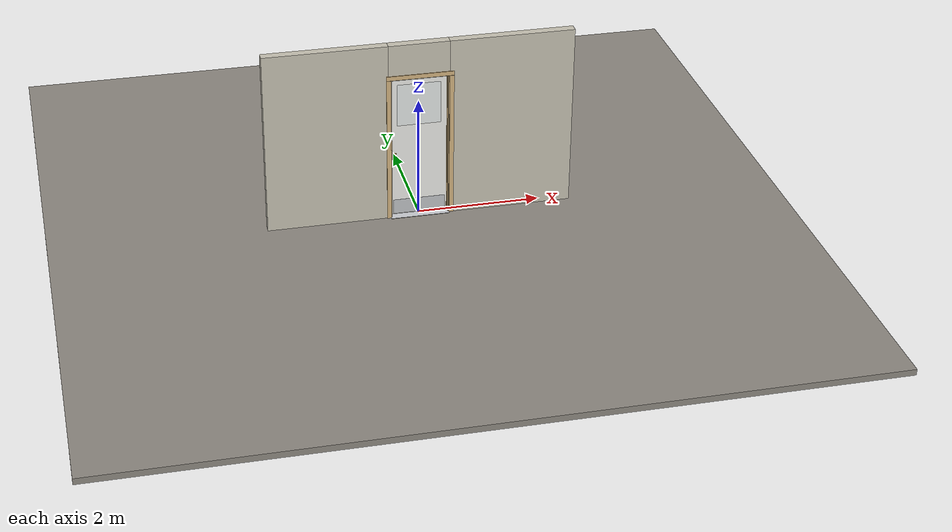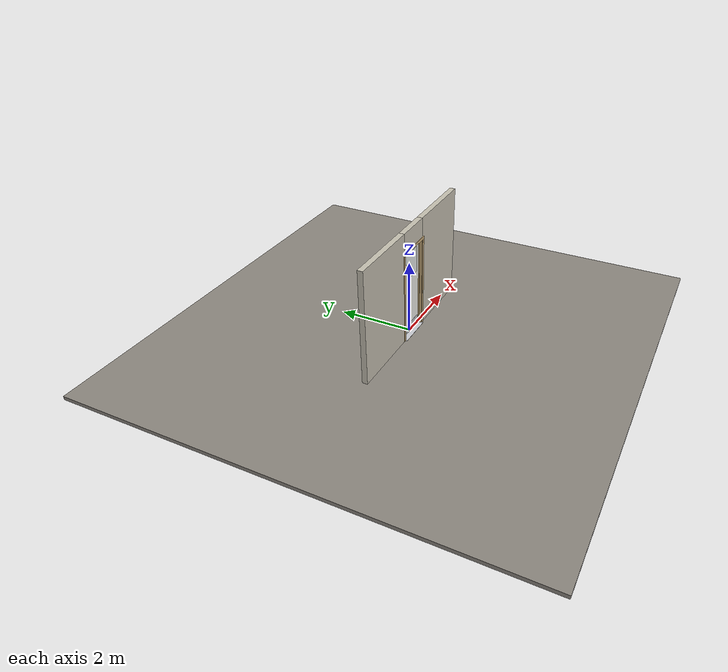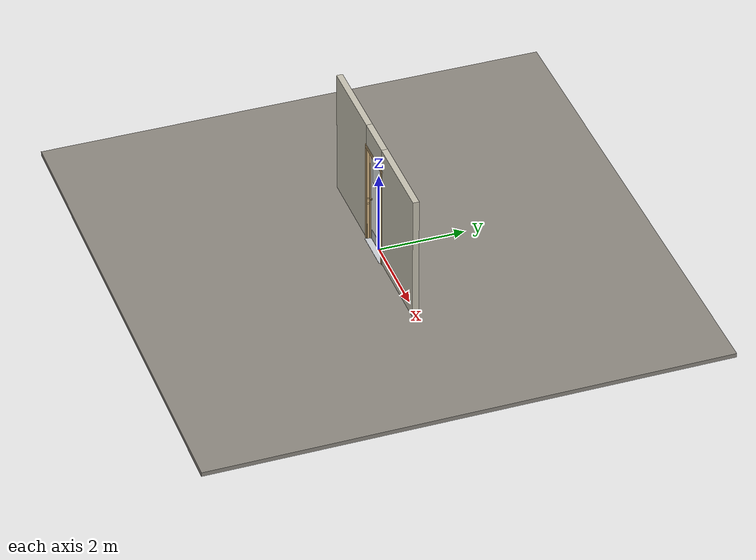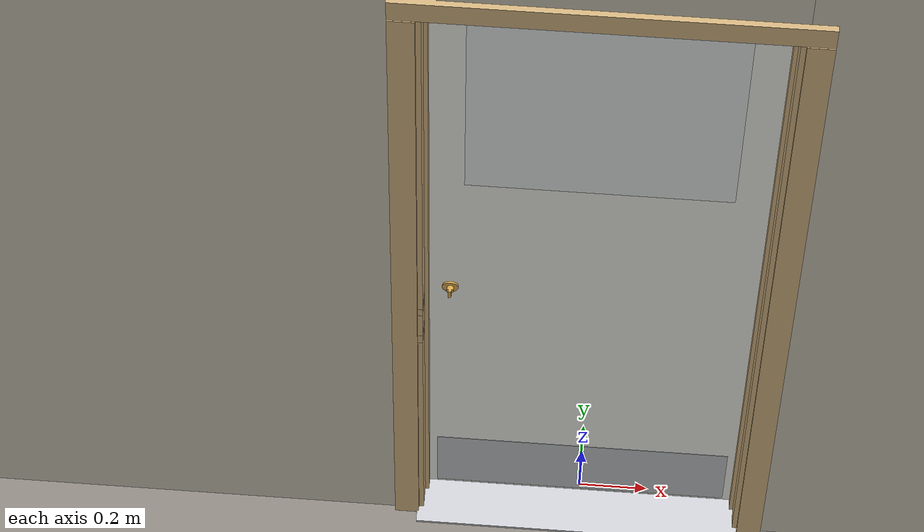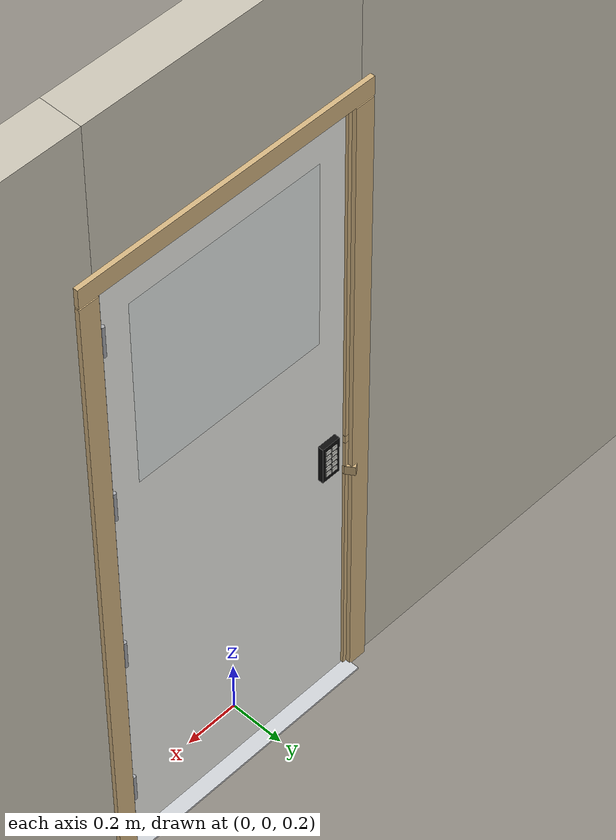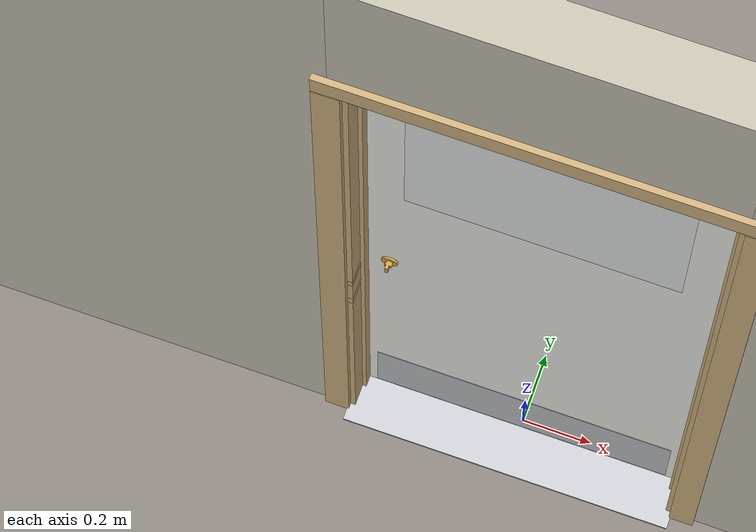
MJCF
<?xml version="1.0" ?>
<mujoco model="db0182_swing_single_full">
  <compiler angle="radian" meshdir="../../hardware" texturedir="../../textures" autolimits="true" inertiafromgeom="false"/>
  <option timestep="0.002" integrator="implicitfast" cone="elliptic" impratio="10" noslip_iterations="3">
    <flag multiccd="enable"/>
  </option>
  <size memory="16M"/>
  <default>
    <geom condim="4" solref="0.005 1" solimp="0.95 0.99 0.001"/>
    <joint solreflimit="0.005 1" solimplimit="0.95 0.99 0.001"/>
    <tendon solreflimit="0.005 1"/>
    <equality solref="0.002 1"/>
  </default>
  <visual>
    <headlight ambient="0.4 0.4 0.4" diffuse="0.7 0.7 0.7" specular="0.2 0.2 0.2"/>
    <quality shadowsize="4096"/>
    <map znear="0.01" zfar="60"/>
  </visual>
  <asset>
    <mesh name="hinge_e22b26c0c1" file="hinge_e22b26c0c1.obj"/>
    <mesh name="hinge_jamb_e1d088f8dc" file="hinge_jamb_e1d088f8dc.obj"/>
    <mesh name="keypad_body_3b2d063948" file="keypad_body_3b2d063948.obj"/>
    <mesh name="thumbturn_eb5c9899a3" file="thumbturn_eb5c9899a3.obj"/>
    <material name="mat_floor" rgba="0.55 0.53 0.5 1" specular="0.2" shininess="0.15" reflectance="0"/>
    <material name="mat_wall" rgba="0.78 0.76 0.7 1" specular="0.2" shininess="0.1" reflectance="0"/>
    <material name="mat_leaf" rgba="0.93 0.93 0.91 1" specular="0.2" shininess="0.47" reflectance="0"/>
    <material name="mat_glass" rgba="0.85 0.92 0.95 0.25" specular="0.2" shininess="0.95" reflectance="0.1"/>
    <material name="mat_hinge" rgba="0.65 0.66 0.68 1" specular="0.74" shininess="0.5" reflectance="0.36"/>
    <material name="mat_op_nickel_satin" rgba="0.72 0.7 0.66 1" specular="0.8" shininess="0.65" reflectance="0.4"/>
    <material name="mat_trim" rgba="0.85 0.66 0.3 1" specular="0.8" shininess="0.75" reflectance="0.4"/>
    <material name="mat_keypad" rgba="0.05 0.05 0.05 1" specular="0.38" shininess="0.3" reflectance="0.12"/>
    <material name="mat_key" rgba="0.85 0.85 0.82 1" specular="0.2" shininess="0.5" reflectance="0"/>
    <material name="mat_bolt" rgba="0.85 0.66 0.3 1" specular="0.8" shininess="0.75" reflectance="0.4"/>
    <material name="mat_deadbolt" rgba="0.85 0.66 0.3 1" specular="0.8" shininess="0.75" reflectance="0.4"/>
    <material name="mat_frame" rgba="0.82 0.7 0.5 1" specular="0.2" shininess="0.45" reflectance="0"/>
    <material name="mat_seal" rgba="0.1 0.1 0.1 1" specular="0.2" shininess="0.1" reflectance="0"/>
    <material name="mat_threshold" rgba="0.8 0.81 0.83 1" specular="0.8" shininess="0.6" reflectance="0.4"/>
    <material name="mat_kick" rgba="0.75 0.76 0.77 1" specular="0.8" shininess="0.65" reflectance="0.4"/>
    <texture name="skybox" type="skybox" builtin="gradient" rgb1="0.6 0.7 0.85" rgb2="0.9 0.92 0.95" width="256" height="256"/>
  </asset>
  <worldbody>
    <light name="sun" pos="1.5 -2.5 4" dir="-0.3 0.5 -0.8" directional="true" diffuse="0.8 0.8 0.8" specular="0.3 0.3 0.3" castshadow="true"/>
    <light name="fill" pos="-1.5 2.5 3" dir="0.3 -0.5 -0.7" directional="true" diffuse="0.35 0.35 0.4" castshadow="false"/>
    <camera name="robot_view" pos="0 -2.966312 2.043887" xyaxes="1 0 0 0 0.26963 0.962964" fovy="52"/>
    <camera name="far_view" pos="0 2.879313 2.043887" xyaxes="-1 0 0 0 -0.26963 0.962964" fovy="52"/>
    <camera name="iso" pos="-2.221337 -2.498663 2.511538" xyaxes="0.741536 -0.670913 0 0.242917 0.268487 0.932151" fovy="46"/>
    <camera name="detail_handle" pos="-0.1735 -0.8435 1.245" xyaxes="0.97561 0.219512 0 -0.070934 0.315262 0.94635" fovy="38"/>
    <geom name="floor" type="box" size="6 6 0.05" pos="0 0 -0.05" material="mat_floor" group="0" contype="1" conaffinity="1" friction="0.8 0.005 0.0001" density="2400"/>
    <geom name="wall_left" type="box" size="0.99525 0.0725 1.5255" pos="-1.50475 -0.0435 1.5255" material="mat_wall" group="0" contype="1" conaffinity="1" friction="0.6 0.005 0.0001" density="800"/>
    <geom name="wall_right" type="box" size="1.01025 0.0725 1.5255" pos="1.48975 -0.0435 1.5255" material="mat_wall" group="0" contype="1" conaffinity="1" friction="0.6 0.005 0.0001" density="800"/>
    <geom name="wall_header" type="box" size="0.4945 0.0725 0.2755" pos="-0.015 -0.0435 2.7755" material="mat_wall" group="0" contype="1" conaffinity="1" friction="0.6 0.005 0.0001" density="800"/>
    <geom name="hinge_0_jamb" type="mesh" mesh="hinge_jamb_e1d088f8dc" pos="0.4575 0.029 0.259" quat="0 0 0 1" material="mat_hinge" group="1" contype="0" conaffinity="0" density="7850"/>
    <geom name="hinge_1_jamb" type="mesh" mesh="hinge_jamb_e1d088f8dc" pos="0.4575 0.029 0.928333" quat="0 0 0 1" material="mat_hinge" group="1" contype="0" conaffinity="0" density="7850"/>
    <geom name="hinge_2_jamb" type="mesh" mesh="hinge_jamb_e1d088f8dc" pos="0.4575 0.029 1.597667" quat="0 0 0 1" material="mat_hinge" group="1" contype="0" conaffinity="0" density="7850"/>
    <geom name="hinge_3_jamb" type="mesh" mesh="hinge_jamb_e1d088f8dc" pos="0.4575 0.029 2.267" quat="0 0 0 1" material="mat_hinge" group="1" contype="0" conaffinity="0" density="7850"/>
    <geom name="leaf_deadbolt_strike_b" type="box" size="0.0155 0.003 0.0005" pos="-0.46 0 1.0865" quat="0.5 0.5 0.5 0.5" material="mat_deadbolt" group="1" contype="0" conaffinity="0" density="7800"/>
    <geom name="leaf_deadbolt_strike_l" type="box" size="0.003 0.0155 0.0005" pos="-0.46 -0.0125 1.105" quat="0.5 0.5 0.5 0.5" material="mat_deadbolt" group="1" contype="0" conaffinity="0" density="7800"/>
    <geom name="leaf_deadbolt_strike_t" type="box" size="0.0155 0.003 0.0005" pos="-0.46 0 1.1235" quat="0.5 0.5 0.5 0.5" material="mat_deadbolt" group="1" contype="0" conaffinity="0" density="7800"/>
    <geom name="leaf_deadbolt_strike_r" type="box" size="0.003 0.0155 0.0005" pos="-0.46 0.0125 1.105" quat="0.5 0.5 0.5 0.5" material="mat_deadbolt" group="1" contype="0" conaffinity="0" density="7800"/>
    <geom name="jamb_hinge" type="box" size="0.0095 0.0725 1.2255" pos="0.47 -0.0435 1.2255" material="mat_frame" group="0" contype="1" conaffinity="1" friction="0.6 0.005 0.0001" density="400"/>
    <geom name="strike_965_wall_n" type="box" size="0.0245 0.05325 0.0183" pos="-0.485 -0.06275 0.965" material="mat_frame" group="0" contype="1" conaffinity="1" friction="0.6 0.005 0.0001" density="400"/>
    <geom name="strike_965_wall_p" type="box" size="0.0245 0.008 0.0183" pos="-0.485 0.0175 0.965" material="mat_frame" group="0" contype="1" conaffinity="1" friction="0.6 0.005 0.0001" density="400"/>
    <geom name="strike_965_ramp" type="box" size="0.0245 0.018028 0.0183" pos="-0.490885 0.02691 0.965" quat="0.957092 0 0 0.289784" material="mat_frame" group="0" contype="1" conaffinity="1" friction="0.12 0.005 0.0001" density="400"/>
    <geom name="strike_965_back" type="box" size="0.013 0.0095 0.0183" pos="-0.4965 0 0.965" material="mat_frame" group="0" contype="1" conaffinity="1" friction="0.6 0.005 0.0001" density="400"/>
    <geom name="strike_1105_wall_n" type="box" size="0.0245 0.05325 0.0155" pos="-0.485 -0.06275 1.105" material="mat_frame" group="0" contype="1" conaffinity="1" friction="0.6 0.005 0.0001" density="400"/>
    <geom name="strike_1105_wall_p" type="box" size="0.0245 0.00975 0.0155" pos="-0.485 0.01925 1.105" material="mat_frame" group="0" contype="1" conaffinity="1" friction="0.6 0.005 0.0001" density="400"/>
    <geom name="strike_1105_back" type="box" size="0.0098 0.0095 0.0155" pos="-0.4997 0 1.105" material="mat_frame" group="0" contype="1" conaffinity="1" friction="0.6 0.005 0.0001" density="400"/>
    <geom name="jamb_strike_0" type="box" size="0.0245 0.0725 0.47335" pos="-0.485 -0.0435 0.47335" material="mat_frame" group="0" contype="1" conaffinity="1" friction="0.6 0.005 0.0001" density="400"/>
    <geom name="jamb_strike_1" type="box" size="0.0245 0.0725 0.0531" pos="-0.485 -0.0435 1.0364" material="mat_frame" group="0" contype="1" conaffinity="1" friction="0.6 0.005 0.0001" density="400"/>
    <geom name="jamb_strike_2" type="box" size="0.0245 0.0725 0.66525" pos="-0.485 -0.0435 1.78575" material="mat_frame" group="0" contype="1" conaffinity="1" friction="0.6 0.005 0.0001" density="400"/>
    <geom name="jamb_head" type="box" size="0.4945 0.0725 0.0095" pos="-0.015 -0.0435 2.4605" material="mat_frame" group="0" contype="1" conaffinity="1" friction="0.6 0.005 0.0001" density="400"/>
    <geom name="head_stud" type="box" size="0.4945 0.0725 0.015" pos="-0.015 -0.0435 2.485" material="mat_wall" group="0" contype="1" conaffinity="1" friction="0.6 0.005 0.0001" density="500"/>
    <geom name="stop_hinge" type="box" size="0.0055 0.016 1.2255" pos="0.455 -0.0385 1.2255" material="mat_frame" group="0" contype="1" conaffinity="1" friction="0.6 0.005 0.0001" density="400"/>
    <geom name="stop_strike" type="box" size="0.0055 0.016 1.2255" pos="-0.455 -0.0385 1.2255" material="mat_frame" group="0" contype="1" conaffinity="1" friction="0.6 0.005 0.0001" density="400"/>
    <geom name="stop_head" type="box" size="0.4605 0.016 0.0055" pos="0 -0.0385 2.4455" material="mat_frame" group="0" contype="1" conaffinity="1" friction="0.6 0.005 0.0001" density="400"/>
    <geom name="seal_hinge" type="box" size="0.004 0.003 1.2255" pos="0.4575 -0.025 1.2255" material="mat_seal" group="1" contype="0" conaffinity="0" density="1100"/>
    <geom name="seal_strike" type="box" size="0.004 0.003 1.2255" pos="-0.4575 -0.025 1.2255" material="mat_seal" group="1" contype="0" conaffinity="0" density="1100"/>
    <geom name="seal_head" type="box" size="0.4405 0.003 0.008" pos="0 -0.025 2.439" material="mat_seal" group="1" contype="0" conaffinity="0" density="1100"/>
    <geom name="casing_l_n" type="box" size="0.035 0.008 1.235" pos="-0.5095 -0.124 1.2255" material="mat_frame" group="2" contype="0" conaffinity="0" density="400"/>
    <geom name="casing_r_n" type="box" size="0.035 0.008 1.235" pos="0.5095 -0.124 1.2255" material="mat_frame" group="2" contype="0" conaffinity="0" density="400"/>
    <geom name="casing_h_n" type="box" size="0.5445 0.008 0.035" pos="0 -0.124 2.5" material="mat_frame" group="2" contype="0" conaffinity="0" density="400"/>
    <geom name="casing_l_p" type="box" size="0.035 0.008 1.235" pos="-0.5095 0.037 1.2255" material="mat_frame" group="2" contype="0" conaffinity="0" density="400"/>
    <geom name="casing_r_p" type="box" size="0.035 0.008 1.235" pos="0.5095 0.037 1.2255" material="mat_frame" group="2" contype="0" conaffinity="0" density="400"/>
    <geom name="casing_h_p" type="box" size="0.5445 0.008 0.035" pos="0 0.037 2.5" material="mat_frame" group="2" contype="0" conaffinity="0" density="400"/>
    <geom name="threshold" type="box" size="0.4795 0.1225 0.004" pos="0 -0.0435 0.004" material="mat_threshold" group="0" contype="1" conaffinity="1" friction="0.6 0.005 0.0001" density="2700"/>
    <site name="approach_point" pos="0 -1.5 0" quat="1 0 0 0" size="0.05" rgba="0.2 0.9 0.2 0.5" group="4"/>
    <site name="goal_point" pos="0 1.5 0" quat="1 0 0 0" size="0.05" rgba="0.2 0.9 0.2 0.5" group="4"/>
    <site name="door_plane_center" pos="0 0 1.2255" quat="1 0 0 0" size="0.02" rgba="0.2 0.9 0.2 0.5" group="4"/>
    <body name="leaf" pos="0.4605 0 0">
      <inertial pos="-0.450567 -0.001099 1.123137" mass="35.830961" quat="0.500612 -0.502005 -0.500022 -0.497349" diaginertia="2.687759874 19.538073865 22.210603919"/>
      <joint name="leaf_hinge" type="hinge" axis="0 0 -1" pos="-0.003 0.029 0" limited="true" range="0 1.919862" solreflimit="0.02 1" damping="0.357281" frictionloss="1.09799" armature="0.02"/>
      <geom name="leaf_slab" type="box" size="0.457 0.022 1.219" pos="-0.46 0 1.228" material="mat_leaf" group="0" contype="1" conaffinity="1" friction="0.4 0.005 0.0001" density="1"/>
      <geom name="leaf_glass_0" type="box" size="0.35646 0.0228 0.358386" pos="-0.46 0 1.966714" material="mat_glass" group="1" contype="0" conaffinity="0" density="1"/>
      <geom name="hinge_0" type="mesh" mesh="hinge_e22b26c0c1" pos="-0.003 0.029 0.259" quat="0 0 0 1" material="mat_hinge" group="1" contype="0" conaffinity="0" density="7850"/>
      <geom name="hinge_1" type="mesh" mesh="hinge_e22b26c0c1" pos="-0.003 0.029 0.928333" quat="0 0 0 1" material="mat_hinge" group="1" contype="0" conaffinity="0" density="7850"/>
      <geom name="hinge_2" type="mesh" mesh="hinge_e22b26c0c1" pos="-0.003 0.029 1.597667" quat="0 0 0 1" material="mat_hinge" group="1" contype="0" conaffinity="0" density="7850"/>
      <geom name="hinge_3" type="mesh" mesh="hinge_e22b26c0c1" pos="-0.003 0.029 2.267" quat="0 0 0 1" material="mat_hinge" group="1" contype="0" conaffinity="0" density="7850"/>
      <geom name="leaf_keypad_body" type="mesh" mesh="keypad_body_3b2d063948" pos="-0.847 0.022 1.085" quat="0 0 0.707107 0.707107" material="mat_keypad" group="0" contype="1" conaffinity="1" friction="0.6 0.005 0.0001" density="2000"/>
      <geom name="leaf_latch_bolt_faceplate" type="box" size="0.0006 0.014 0.0283" pos="-0.9164 0 0.965" material="mat_bolt" group="1" contype="0" conaffinity="0" density="8500"/>
      <geom name="leaf_deadbolt_faceplate" type="box" size="0.0006 0.014 0.0245" pos="-0.9164 0 1.105" material="mat_deadbolt" group="1" contype="0" conaffinity="0" density="8500"/>
      <geom name="kick_plate_n" type="box" size="0.427 0.0008 0.125" pos="-0.46 -0.0228 0.144" material="mat_kick" group="2" contype="0" conaffinity="0" density="7900"/>
      <site name="leaf_edge_mid" pos="-0.917 0 1.219" quat="1 0 0 0" size="0.02" rgba="0.2 0.9 0.2 0.5" group="4"/>
      <body name="leaf_handle" pos="-0.847 0 0.965">
        <inertial pos="0 0 0" mass="0.037288" quat="0.5 0.5 0.5 0.5" diaginertia="0.000000671 0.000005817 0.000005817"/>
        <joint name="leaf_handle_hinge" type="hinge" axis="0 1 0" limited="true" range="0 0.87" damping="0.141426" frictionloss="0.048" stiffness="0.5" springref="-0.5" armature="0.01"/>
        <geom name="leaf_handle_spindle" type="cylinder" size="0.006 0.021" pos="0 0 0" quat="0.707107 -0.707107 0 0" material="mat_op_nickel_satin" group="1" contype="0" conaffinity="0" density="7850"/>
      </body>
      <body name="leaf_keypad_key_1" pos="-0.834 0.042 1.133">
        <inertial pos="0 0.0015 0" mass="0.001008" quat="0 0 0.707107 0.707107" diaginertia="0.000000017 0.000000034 0.00000005"/>
        <joint name="leaf_keypad_key_1_slide" type="slide" axis="0 -1 0" limited="true" range="0 0.0015" damping="14" frictionloss="0.05" stiffness="1000" springref="-0.0015" armature="0.1"/>
        <geom name="leaf_keypad_key_1_geom" type="box" size="0.01 0.0015 0.007" pos="0 0.0015 0" material="mat_key" group="0" contype="1" conaffinity="1" friction="0.6 0.005 0.0001" density="1200"/>
        <site name="leaf_keypad_key_1_press" pos="0 0.005 0" quat="1 0 0 0" size="0.008" rgba="0.2 0.9 0.2 0.5" group="4"/>
      </body>
      <body name="leaf_keypad_key_2" pos="-0.86 0.042 1.133">
        <inertial pos="0 0.0015 0" mass="0.001008" quat="0 0 0.707107 0.707107" diaginertia="0.000000017 0.000000034 0.00000005"/>
        <joint name="leaf_keypad_key_2_slide" type="slide" axis="0 -1 0" limited="true" range="0 0.0015" damping="14" frictionloss="0.05" stiffness="1000" springref="-0.0015" armature="0.1"/>
        <geom name="leaf_keypad_key_2_geom" type="box" size="0.01 0.0015 0.007" pos="0 0.0015 0" material="mat_key" group="0" contype="1" conaffinity="1" friction="0.6 0.005 0.0001" density="1200"/>
        <site name="leaf_keypad_key_2_press" pos="0 0.005 0" quat="1 0 0 0" size="0.008" rgba="0.2 0.9 0.2 0.5" group="4"/>
      </body>
      <body name="leaf_keypad_key_3" pos="-0.834 0.042 1.109">
        <inertial pos="0 0.0015 0" mass="0.001008" quat="0 0 0.707107 0.707107" diaginertia="0.000000017 0.000000034 0.00000005"/>
        <joint name="leaf_keypad_key_3_slide" type="slide" axis="0 -1 0" limited="true" range="0 0.0015" damping="14" frictionloss="0.05" stiffness="1000" springref="-0.0015" armature="0.1"/>
        <geom name="leaf_keypad_key_3_geom" type="box" size="0.01 0.0015 0.007" pos="0 0.0015 0" material="mat_key" group="0" contype="1" conaffinity="1" friction="0.6 0.005 0.0001" density="1200"/>
        <site name="leaf_keypad_key_3_press" pos="0 0.005 0" quat="1 0 0 0" size="0.008" rgba="0.2 0.9 0.2 0.5" group="4"/>
      </body>
      <body name="leaf_keypad_key_4" pos="-0.86 0.042 1.109">
        <inertial pos="0 0.0015 0" mass="0.001008" quat="0 0 0.707107 0.707107" diaginertia="0.000000017 0.000000034 0.00000005"/>
        <joint name="leaf_keypad_key_4_slide" type="slide" axis="0 -1 0" limited="true" range="0 0.0015" damping="14" frictionloss="0.05" stiffness="1000" springref="-0.0015" armature="0.1"/>
        <geom name="leaf_keypad_key_4_geom" type="box" size="0.01 0.0015 0.007" pos="0 0.0015 0" material="mat_key" group="0" contype="1" conaffinity="1" friction="0.6 0.005 0.0001" density="1200"/>
        <site name="leaf_keypad_key_4_press" pos="0 0.005 0" quat="1 0 0 0" size="0.008" rgba="0.2 0.9 0.2 0.5" group="4"/>
      </body>
      <body name="leaf_keypad_key_5" pos="-0.834 0.042 1.085">
        <inertial pos="0 0.0015 0" mass="0.001008" quat="0 0 0.707107 0.707107" diaginertia="0.000000017 0.000000034 0.00000005"/>
        <joint name="leaf_keypad_key_5_slide" type="slide" axis="0 -1 0" limited="true" range="0 0.0015" damping="14" frictionloss="0.05" stiffness="1000" springref="-0.0015" armature="0.1"/>
        <geom name="leaf_keypad_key_5_geom" type="box" size="0.01 0.0015 0.007" pos="0 0.0015 0" material="mat_key" group="0" contype="1" conaffinity="1" friction="0.6 0.005 0.0001" density="1200"/>
        <site name="leaf_keypad_key_5_press" pos="0 0.005 0" quat="1 0 0 0" size="0.008" rgba="0.2 0.9 0.2 0.5" group="4"/>
      </body>
      <body name="leaf_keypad_key_6" pos="-0.86 0.042 1.085">
        <inertial pos="0 0.0015 0" mass="0.001008" quat="0 0 0.707107 0.707107" diaginertia="0.000000017 0.000000034 0.00000005"/>
        <joint name="leaf_keypad_key_6_slide" type="slide" axis="0 -1 0" limited="true" range="0 0.0015" damping="14" frictionloss="0.05" stiffness="1000" springref="-0.0015" armature="0.1"/>
        <geom name="leaf_keypad_key_6_geom" type="box" size="0.01 0.0015 0.007" pos="0 0.0015 0" material="mat_key" group="0" contype="1" conaffinity="1" friction="0.6 0.005 0.0001" density="1200"/>
        <site name="leaf_keypad_key_6_press" pos="0 0.005 0" quat="1 0 0 0" size="0.008" rgba="0.2 0.9 0.2 0.5" group="4"/>
      </body>
      <body name="leaf_keypad_key_7" pos="-0.834 0.042 1.061">
        <inertial pos="0 0.0015 0" mass="0.001008" quat="0 0 0.707107 0.707107" diaginertia="0.000000017 0.000000034 0.00000005"/>
        <joint name="leaf_keypad_key_7_slide" type="slide" axis="0 -1 0" limited="true" range="0 0.0015" damping="14" frictionloss="0.05" stiffness="1000" springref="-0.0015" armature="0.1"/>
        <geom name="leaf_keypad_key_7_geom" type="box" size="0.01 0.0015 0.007" pos="0 0.0015 0" material="mat_key" group="0" contype="1" conaffinity="1" friction="0.6 0.005 0.0001" density="1200"/>
        <site name="leaf_keypad_key_7_press" pos="0 0.005 0" quat="1 0 0 0" size="0.008" rgba="0.2 0.9 0.2 0.5" group="4"/>
      </body>
      <body name="leaf_keypad_key_8" pos="-0.86 0.042 1.061">
        <inertial pos="0 0.0015 0" mass="0.001008" quat="0 0 0.707107 0.707107" diaginertia="0.000000017 0.000000034 0.00000005"/>
        <joint name="leaf_keypad_key_8_slide" type="slide" axis="0 -1 0" limited="true" range="0 0.0015" damping="14" frictionloss="0.05" stiffness="1000" springref="-0.0015" armature="0.1"/>
        <geom name="leaf_keypad_key_8_geom" type="box" size="0.01 0.0015 0.007" pos="0 0.0015 0" material="mat_key" group="0" contype="1" conaffinity="1" friction="0.6 0.005 0.0001" density="1200"/>
        <site name="leaf_keypad_key_8_press" pos="0 0.005 0" quat="1 0 0 0" size="0.008" rgba="0.2 0.9 0.2 0.5" group="4"/>
      </body>
      <body name="leaf_keypad_key_9" pos="-0.834 0.042 1.037">
        <inertial pos="0 0.0015 0" mass="0.001008" quat="0 0 0.707107 0.707107" diaginertia="0.000000017 0.000000034 0.00000005"/>
        <joint name="leaf_keypad_key_9_slide" type="slide" axis="0 -1 0" limited="true" range="0 0.0015" damping="14" frictionloss="0.05" stiffness="1000" springref="-0.0015" armature="0.1"/>
        <geom name="leaf_keypad_key_9_geom" type="box" size="0.01 0.0015 0.007" pos="0 0.0015 0" material="mat_key" group="0" contype="1" conaffinity="1" friction="0.6 0.005 0.0001" density="1200"/>
        <site name="leaf_keypad_key_9_press" pos="0 0.005 0" quat="1 0 0 0" size="0.008" rgba="0.2 0.9 0.2 0.5" group="4"/>
      </body>
      <body name="leaf_keypad_key_0" pos="-0.86 0.042 1.037">
        <inertial pos="0 0.0015 0" mass="0.001008" quat="0 0 0.707107 0.707107" diaginertia="0.000000017 0.000000034 0.00000005"/>
        <joint name="leaf_keypad_key_0_slide" type="slide" axis="0 -1 0" limited="true" range="0 0.0015" damping="14" frictionloss="0.05" stiffness="1000" springref="-0.0015" armature="0.1"/>
        <geom name="leaf_keypad_key_0_geom" type="box" size="0.01 0.0015 0.007" pos="0 0.0015 0" material="mat_key" group="0" contype="1" conaffinity="1" friction="0.6 0.005 0.0001" density="1200"/>
        <site name="leaf_keypad_key_0_press" pos="0 0.005 0" quat="1 0 0 0" size="0.008" rgba="0.2 0.9 0.2 0.5" group="4"/>
      </body>
      <body name="leaf_latch_bolt" pos="-0.917 0 0.965">
        <inertial pos="0.0055 0 0" mass="0.074627" quat="0.92388 0.382683 0 0" diaginertia="0.000002271 0.000013255 0.000013255"/>
        <joint name="leaf_latch_bolt_slide" type="slide" axis="1 0 0" limited="true" range="0 0.019" damping="2" frictionloss="0.3" stiffness="600" springref="-0.01" armature="0.1"/>
        <geom name="leaf_latch_bolt_capsule" type="capsule" size="0.008 0.0165" pos="0.0055 0 0" quat="0.707107 0 -0.707107 0" material="mat_bolt" group="0" contype="1" conaffinity="1" friction="0.2 0.005 0.0001" density="8500"/>
      </body>
      <body name="leaf_deadbolt" pos="-0.917 0 1.105">
        <inertial pos="0.0023 0 0" mass="0.18836" quat="0 0 0.707107 0.707107" diaginertia="0.000013829 0.000052194 0.000057986"/>
        <joint name="leaf_deadbolt_slide" type="slide" axis="1 0 0" limited="true" range="0 0.0254" damping="5" frictionloss="1.5" armature="0.1"/>
        <geom name="leaf_deadbolt_box" type="box" size="0.0277 0.008 0.0125" pos="0.0023 0 0" material="mat_deadbolt" group="0" contype="1" conaffinity="1" friction="0.3 0.005 0.0001" density="8500"/>
      </body>
      <body name="leaf_deadbolt_thumbturn" pos="-0.852 -0.022 1.105">
        <inertial pos="0 -0.012928 0" mass="0.178946" quat="0.5 0.5 0.5 0.5" diaginertia="0.000026045 0.000026215 0.000032438"/>
        <joint name="leaf_deadbolt_thumbturn_hinge" type="hinge" axis="0 1 0" limited="true" range="0 1.5708" damping="0.05" frictionloss="0.3" armature="0.005"/>
        <geom name="leaf_deadbolt_thumbturn_mesh" type="mesh" mesh="thumbturn_eb5c9899a3" pos="0 0 0" quat="0 0 -0.707107 0.707107" material="mat_deadbolt" group="0" contype="1" conaffinity="1" friction="0.6 0.005 0.0001" density="7100"/>
        <geom name="leaf_deadbolt_thumbturn_col" type="box" size="0.006 0.012 0.016" pos="0 -0.02 0" material="mat_deadbolt" group="3" contype="1" conaffinity="1" rgba="0.8 0.3 0.3 0.25" friction="0.6 0.005 0.0001" density="7100"/>
      </body>
    </body>
  </worldbody>
  <tendon>
    <fixed name="leaf_latch_bolt_coupling" limited="true" range="0 10">
      <joint joint="leaf_latch_bolt_slide" coef="1"/>
      <joint joint="leaf_handle_hinge" coef="-0.023457"/>
    </fixed>
  </tendon>
  <equality>
    <joint name="leaf_deadbolt_couple" joint1="leaf_deadbolt_slide" joint2="leaf_deadbolt_thumbturn_hinge" polycoef="0 0.01617 0 0 0" active="true"/>
  </equality>
  <contact>
    <exclude body1="leaf_deadbolt" body2="leaf_deadbolt_thumbturn"/>
  </contact>
  <sensor>
    <jointpos name="leaf_hinge_pos" joint="leaf_hinge"/>
    <jointvel name="leaf_hinge_vel" joint="leaf_hinge"/>
    <jointpos name="leaf_handle_hinge_pos" joint="leaf_handle_hinge"/>
    <jointvel name="leaf_handle_hinge_vel" joint="leaf_handle_hinge"/>
    <jointpos name="leaf_keypad_key_1_slide_pos" joint="leaf_keypad_key_1_slide"/>
    <jointvel name="leaf_keypad_key_1_slide_vel" joint="leaf_keypad_key_1_slide"/>
    <jointpos name="leaf_keypad_key_2_slide_pos" joint="leaf_keypad_key_2_slide"/>
    <jointvel name="leaf_keypad_key_2_slide_vel" joint="leaf_keypad_key_2_slide"/>
    <jointpos name="leaf_keypad_key_3_slide_pos" joint="leaf_keypad_key_3_slide"/>
    <jointvel name="leaf_keypad_key_3_slide_vel" joint="leaf_keypad_key_3_slide"/>
    <jointpos name="leaf_keypad_key_4_slide_pos" joint="leaf_keypad_key_4_slide"/>
    <jointvel name="leaf_keypad_key_4_slide_vel" joint="leaf_keypad_key_4_slide"/>
    <jointpos name="leaf_keypad_key_5_slide_pos" joint="leaf_keypad_key_5_slide"/>
    <jointvel name="leaf_keypad_key_5_slide_vel" joint="leaf_keypad_key_5_slide"/>
    <jointpos name="leaf_keypad_key_6_slide_pos" joint="leaf_keypad_key_6_slide"/>
    <jointvel name="leaf_keypad_key_6_slide_vel" joint="leaf_keypad_key_6_slide"/>
    <jointpos name="leaf_keypad_key_7_slide_pos" joint="leaf_keypad_key_7_slide"/>
    <jointvel name="leaf_keypad_key_7_slide_vel" joint="leaf_keypad_key_7_slide"/>
    <jointpos name="leaf_keypad_key_8_slide_pos" joint="leaf_keypad_key_8_slide"/>
    <jointvel name="leaf_keypad_key_8_slide_vel" joint="leaf_keypad_key_8_slide"/>
    <jointpos name="leaf_keypad_key_9_slide_pos" joint="leaf_keypad_key_9_slide"/>
    <jointvel name="leaf_keypad_key_9_slide_vel" joint="leaf_keypad_key_9_slide"/>
    <jointpos name="leaf_keypad_key_0_slide_pos" joint="leaf_keypad_key_0_slide"/>
    <jointvel name="leaf_keypad_key_0_slide_vel" joint="leaf_keypad_key_0_slide"/>
    <jointpos name="leaf_latch_bolt_slide_pos" joint="leaf_latch_bolt_slide"/>
    <jointvel name="leaf_latch_bolt_slide_vel" joint="leaf_latch_bolt_slide"/>
    <jointpos name="leaf_deadbolt_slide_pos" joint="leaf_deadbolt_slide"/>
    <jointvel name="leaf_deadbolt_slide_vel" joint="leaf_deadbolt_slide"/>
    <jointpos name="leaf_deadbolt_thumbturn_hinge_pos" joint="leaf_deadbolt_thumbturn_hinge"/>
    <jointvel name="leaf_deadbolt_thumbturn_hinge_vel" joint="leaf_deadbolt_thumbturn_hinge"/>
  </sensor>
</mujoco>
